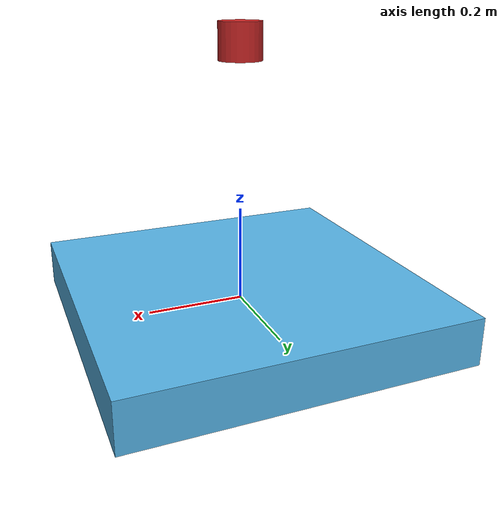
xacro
<?xml version="1.0"?>
<robot xmlns:xacro="http://www.ros.org/wiki/xacro" name="example">
  <xacro:arg name="gpu" default="false"/>
  <xacro:property name="gpu" value="$(arg gpu)" />
  <xacro:arg name="organize_cloud" default="false"/>
  <xacro:property name="organize_cloud" value="$(arg organize_cloud)" />

  <!-- Base Footprint -->
  <link name="base_footprint" />

  <!-- Base Link -->
  <joint name="footprint" type="fixed" >
   <parent link="base_footprint" />
    <child link="base_link" />
    <origin xyz="0 0 0" rpy="0 0 0" />
  </joint>
  <link name="base_link" >
    <visual>
      <geometry>
        <box size="0.7 0.7 0.1"/>
      </geometry>
    </visual>
    <collision>
      <origin rpy="0 0 0" xyz="0 0 0.0"/>
      <geometry>
        <box size="0.7 0.7 0.1"/>
      </geometry>
    </collision>
    <inertial>
      <origin xyz="0 0 0"/>
      <mass value="5"/>
      <inertia ixx="3.0" ixy="0.0" ixz="0.0"
               iyy="3.0" iyz="0.0"
               izz="3.0" />
    </inertial>
  </link>

  <xacro:include filename="$(find robosense_description)/urdf/Ouster_SO1.urdf.xacro"/>
  <xacro:Ouster_SO1 parent="base_link" name="Ouster_SO1" topic="/Ouster_SO1_points" organize_cloud="${organize_cloud}" hz="10" samples="2048" gpu="${gpu}">
    <origin xyz="0 0 0.5" rpy="0 0 0" />
  </xacro:Ouster_SO1>

</robot>

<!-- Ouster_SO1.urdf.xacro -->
<robot xmlns:xacro="http://www.ros.org/wiki/xacro" name="Ouster_SO1">
  <xacro:property name="M_PI" value="3.1415926535897931" />
  <xacro:macro name="Ouster_SO1" params="*origin parent:=base_link name:=Ouster_SO1 topic:=/ouster_so1_points organize_cloud:=false hz:=10 lasers:=32 samples:=1024 collision_range:=0.3 min_range:=0.3 max_range:=100.0 noise:=0.008 horizontal_min_angle:=-${M_PI} horizontal_max_angle:=${M_PI} vertical_min_angle:=${-22.5*M_PI/180.0} vertical_max_angle:=${22.5*M_PI/180.0} gpu:=false">

    <joint name="${name}_base_mount_joint" type="fixed">
      <xacro:insert_block name="origin" />
      <parent link="${parent}"/>
      <child link="${name}_base_link"/>
    </joint>

    <link name="${name}_base_link">
      <inertial>
        <origin xyz="0 0 0"/>
        <mass value="1.0"/>
        <inertia ixx="${(1.0 * (3.0*0.04267*0.04267 + 0.14424*0.14424)) / 12.0}" ixy="0" ixz="0"
          iyy="${(1.0 * (3.0*0.04267*0.04267 + 0.14424*0.14424)) / 12.0}" iyz="0"
          izz="${0.5 * 1.0 * (0.04267*0.04267)}"/>
      </inertial>
      <visual>
        <origin xyz="0 0 0.03675"/>
        <geometry>
          <cylinder radius="0.0435" length="0.0735"/>
        </geometry>
      </visual>
      <collision>
        <origin xyz="0 0 0.03675"/>
        <geometry>
          <cylinder radius="0.0435" length="0.0735"/>
        </geometry>
      </collision>
    </link>

    <joint name="${name}_base_scan_joint" type="fixed" >
      <origin xyz="0 0 0" rpy="0 0 0" />
      <parent link="${name}_base_link" />
      <child link="${name}"/>
    </joint>

    <link name="${name}">
      <inertial>
        <mass value="0.01"/>
        <origin xyz="0 0 0"/>
        <inertia ixx="1e-7" ixy="0" ixz="0" iyy="1e-7" iyz="0" izz="1e-7"/>
      </inertial>
    </link>

    <!-- Gazebo requires the velodyne_gazebo_plugins package -->
    <gazebo reference="${name}">
      <xacro:if value="${gpu}">
        <sensor type="gpu_ray" name="${name}">
          <pose>0 0 0 0 0 0</pose>
          <visualize>false</visualize>
          <update_rate>${hz}</update_rate>
          <ray>
            <scan>
              <horizontal>
                <samples>${samples}</samples>
                <resolution>1</resolution>
                <min_angle>${horizontal_min_angle}</min_angle>
                <max_angle>${horizontal_max_angle}</max_angle>
              </horizontal>
              <vertical>
                <samples>${lasers}</samples>
                <resolution>1</resolution>
                <min_angle>${vertical_min_angle}</min_angle>
                <max_angle>${vertical_max_angle}</max_angle>
              </vertical>
            </scan>
            <range>
              <min>${collision_range}</min>
              <max>${max_range+1}</max>
              <resolution>0.001</resolution>
            </range>
            <noise>
              <type>gaussian</type>
              <mean>0.0</mean>
              <stddev>0.0</stddev>
            </noise>
          </ray>
          <plugin name="gazebo_ros_laser_controller" filename="libgazebo_ros_velodyne_gpu_laser.so">
            <topicName>${topic}</topicName>
            <frameName>${name}</frameName>
            <organize_cloud>${organize_cloud}</organize_cloud>
            <min_range>${min_range}</min_range>
            <max_range>${max_range}</max_range>
            <gaussianNoise>${noise}</gaussianNoise>
          </plugin>
        </sensor>
      </xacro:if>
      <xacro:unless value="${gpu}">
        <sensor type="ray" name="${name}">
          <pose>0 0 0 0 0 0</pose>
          <visualize>false</visualize>
          <update_rate>${hz}</update_rate>
          <ray>
            <scan>
              <horizontal>
                <samples>${samples}</samples>
                <resolution>1</resolution>
                <min_angle>${horizontal_min_angle}</min_angle>
                <max_angle>${horizontal_max_angle}</max_angle>
              </horizontal>
              <vertical>
                <samples>${lasers}</samples>
                <resolution>1</resolution>
                <min_angle>${vertical_min_angle}</min_angle>
                <max_angle>${vertical_max_angle}</max_angle>
              </vertical>
            </scan>
            <range>
              <min>${collision_range}</min>
              <max>${max_range+1}</max>
              <resolution>0.001</resolution>
            </range>
            <noise>
              <type>gaussian</type>
              <mean>0.0</mean>
              <stddev>0.0</stddev>
            </noise>
          </ray>
          <plugin name="gazebo_ros_laser_controller" filename="libgazebo_ros_velodyne_laser.so">
            <topicName>${topic}</topicName>
            <frameName>${name}</frameName>
            <organize_cloud>${organize_cloud}</organize_cloud>
            <min_range>${min_range}</min_range>
            <max_range>${max_range}</max_range>
            <gaussianNoise>${noise}</gaussianNoise>
          </plugin>
        </sensor>
      </xacro:unless>
    </gazebo>

      <gazebo reference="${name}_base_link">
    <material>Gazebo/Red</material>
  </gazebo>

  </xacro:macro>
</robot>
